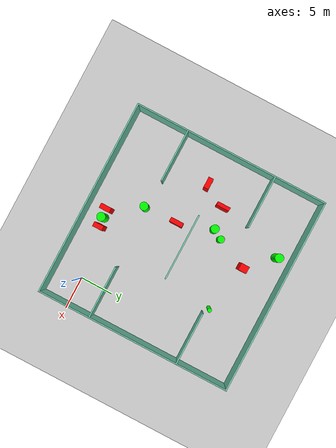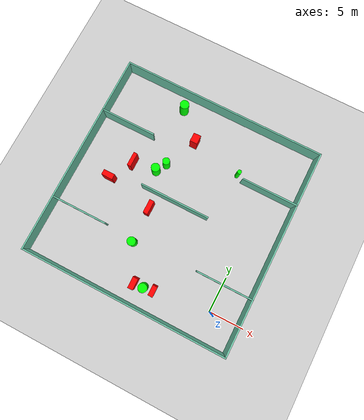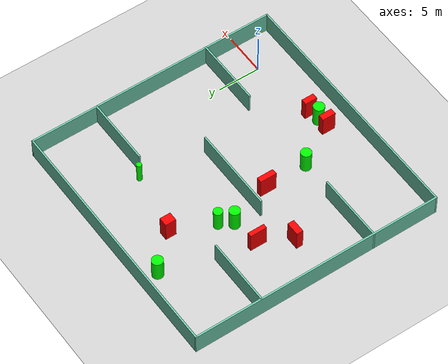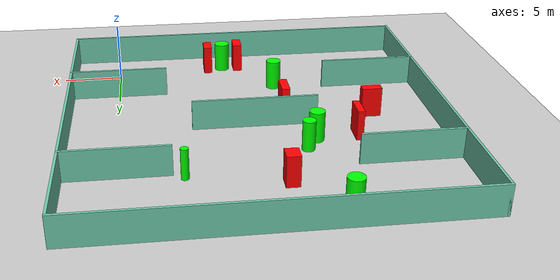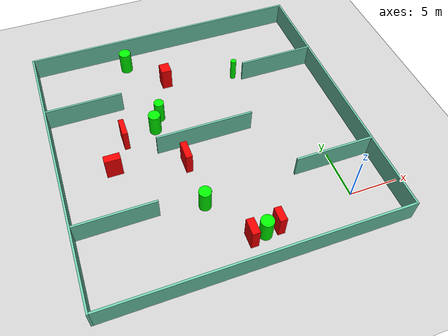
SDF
<sdf version="1.7">
 <world name="default">
  <light name="sun" type="directional">
   <pose>0 0 10 0 -0 0</pose>
   <diffuse>0.8 0.8 0.8 1</diffuse>
   <specular>0.2 0.2 0.2 1</specular>
   <attenuation>
    <range>1000</range>
    <constant>0.9</constant>
    <linear>0.01</linear>
    <quadratic>0.001</quadratic>
   </attenuation>
   <direction>-0.5 0.1 -0.9</direction>
   <spot><inner_angle>0</inner_angle><outer_angle>0</outer_angle><falloff>0</falloff></spot>
  </light>
  <model name="ground_plane">
   <static>1</static>
   <link name="link">
    <collision name="collision">
     <geometry><plane><normal>0 0 1</normal><size>100 100</size></plane></geometry>
     <surface>
      <contact><collide_bitmask>65535</collide_bitmask></contact>
      <friction><ode><mu>100</mu><mu2>50</mu2></ode></friction>
     </surface>
    </collision>
    <visual name="visual">
     <cast_shadows>0</cast_shadows>
     <geometry><plane><normal>0 0 1</normal><size>100 100</size></plane></geometry>
     <material>
      <script><uri>file://media/materials/scripts/gazebo.material</uri><name>Gazebo/Grey</name></script>
     </material>
    </visual>
   </link>
  </model>
  <gravity>0 0 -9.8</gravity>
  <magnetic_field>6e-06 2.3e-05 -4.2e-05</magnetic_field>
  <atmosphere type="adiabatic"/>
  <physics type="ode">
   <max_step_size>0.001</max_step_size>
   <real_time_factor>1</real_time_factor>
   <real_time_update_rate>1000</real_time_update_rate>
  </physics>
  <scene><ambient>0.4 0.4 0.4 1</ambient><background>0.7 0.7 0.7 1</background><shadows>1</shadows></scene>
  <spherical_coordinates>
   <surface_model>EARTH_WGS84</surface_model>
   <latitude_deg>0</latitude_deg>
   <longitude_deg>0</longitude_deg>
   <elevation>0</elevation>
   <heading_deg>0</heading_deg>
  </spherical_coordinates>
  <model name="my_base_walls">
   <link name="Wall_10">
    <collision name="Wall_10_Collision">
     <geometry><box><size>8.2 0.2 2.5</size></box></geometry>
     <pose>0 0 1.25 0 -0 0</pose>
    </collision>
    <visual name="Wall_10_Visual">
     <pose>0 0 1.25 0 -0 0</pose>
     <geometry><box><size>8.2 0.2 2.5</size></box></geometry>
     <material>
      <script><uri>file://media/materials/scripts/gazebo.material</uri><name>Gazebo/Grey</name></script>
      <ambient>0.435294 0.796078 0.67451 1</ambient>
     </material>
     <meta><layer>0</layer></meta>
    </visual>
    <pose>-11 -7 0 0 -0 0</pose>
   </link>
   <link name="Wall_12">
    <collision name="Wall_12_Collision">
     <geometry><box><size>8.2 0.2 2.5</size></box></geometry>
     <pose>0 0 1.25 0 -0 0</pose>
    </collision>
    <visual name="Wall_12_Visual">
     <pose>0 0 1.25 0 -0 0</pose>
     <geometry><box><size>8.2 0.2 2.5</size></box></geometry>
     <material>
      <script><uri>file://media/materials/scripts/gazebo.material</uri><name>Gazebo/Grey</name></script>
      <ambient>0.435294 0.796078 0.67451 1</ambient>
     </material>
     <meta><layer>0</layer></meta>
    </visual>
    <pose>-11 7 0 0 -0 0</pose>
   </link>
   <link name="Wall_14">
    <collision name="Wall_14_Collision">
     <geometry><box><size>8.2 0.2 2.5</size></box></geometry>
     <pose>0 0 1.25 0 -0 0</pose>
    </collision>
    <visual name="Wall_14_Visual">
     <pose>0 0 1.25 0 -0 0</pose>
     <geometry><box><size>8.2 0.2 2.5</size></box></geometry>
     <material>
      <script><uri>file://media/materials/scripts/gazebo.material</uri><name>Gazebo/Grey</name></script>
      <ambient>0.435294 0.796078 0.67451 1</ambient>
     </material>
     <meta><layer>0</layer></meta>
    </visual>
    <pose>11 7 0 0 -0 3.14159</pose>
   </link>
   <link name="Wall_16">
    <collision name="Wall_16_Collision">
     <geometry><box><size>10.2 0.2 2.5</size></box></geometry>
     <pose>0 0 1.25 0 -0 0</pose>
    </collision>
    <visual name="Wall_16_Visual">
     <pose>0 0 1.25 0 -0 0</pose>
     <geometry><box><size>10.2 0.2 2.5</size></box></geometry>
     <material>
      <script><uri>file://media/materials/scripts/gazebo.material</uri><name>Gazebo/Grey</name></script>
      <ambient>0.435294 0.796078 0.67451 1</ambient>
     </material>
     <meta><layer>0</layer></meta>
    </visual>
    <pose>0 0 0 0 -0 3.14159</pose>
   </link>
   <link name="Wall_2">
    <collision name="Wall_2_Collision">
     <geometry><box><size>30.2 0.2 2.5</size></box></geometry>
     <pose>0 0 1.25 0 -0 0</pose>
    </collision>
    <visual name="Wall_2_Visual">
     <pose>0 0 1.25 0 -0 0</pose>
     <geometry><box><size>30.2 0.2 2.5</size></box></geometry>
     <material>
      <script><uri>file://media/materials/scripts/gazebo.material</uri><name>Gazebo/Grey</name></script>
      <ambient>0.435294 0.796078 0.67451 1</ambient>
     </material>
     <meta><layer>0</layer></meta>
    </visual>
    <pose>0 -15 0 0 -0 3.14159</pose>
   </link>
   <link name="Wall_3">
    <collision name="Wall_3_Collision">
     <geometry><box><size>30.2 0.2 2.5</size></box></geometry>
     <pose>0 0 1.25 0 -0 0</pose>
    </collision>
    <visual name="Wall_3_Visual">
     <pose>0 0 1.25 0 -0 0</pose>
     <geometry><box><size>30.2 0.2 2.5</size></box></geometry>
     <material>
      <script><uri>file://media/materials/scripts/gazebo.material</uri><name>Gazebo/Grey</name></script>
      <ambient>0.435294 0.796078 0.67451 1</ambient>
     </material>
     <meta><layer>0</layer></meta>
    </visual>
    <pose>-15 0 0 0 -0 1.5708</pose>
   </link>
   <link name="Wall_4">
    <collision name="Wall_4_Collision">
     <geometry><box><size>30.2 0.2 2.5</size></box></geometry>
     <pose>0 0 1.25 0 -0 0</pose>
    </collision>
    <visual name="Wall_4_Visual">
     <pose>0 0 1.25 0 -0 0</pose>
     <geometry><box><size>30.2 0.2 2.5</size></box></geometry>
     <material>
      <script><uri>file://media/materials/scripts/gazebo.material</uri><name>Gazebo/Grey</name></script>
      <ambient>0.435294 0.796078 0.67451 1</ambient>
     </material>
     <meta><layer>0</layer></meta>
    </visual>
    <pose>0 15 0 0 -0 0</pose>
   </link>
   <link name="Wall_6">
    <collision name="Wall_6_Collision">
     <geometry><box><size>30.2 0.2 2.5</size></box></geometry>
     <pose>0 0 1.25 0 -0 0</pose>
    </collision>
    <visual name="Wall_6_Visual">
     <pose>0 0 1.25 0 -0 0</pose>
     <geometry><box><size>30.2 0.2 2.5</size></box></geometry>
     <material>
      <script><uri>file://media/materials/scripts/gazebo.material</uri><name>Gazebo/Grey</name></script>
      <ambient>0.435294 0.796078 0.67451 1</ambient>
     </material>
     <meta><layer>0</layer></meta>
    </visual>
    <pose>15 0 0 0 -0 1.5708</pose>
   </link>
   <link name="Wall_8">
    <collision name="Wall_8_Collision">
     <geometry><box><size>8.2 0.2 2.5</size></box></geometry>
     <pose>0 0 1.25 0 -0 0</pose>
    </collision>
    <visual name="Wall_8_Visual">
     <pose>0 0 1.25 0 -0 0</pose>
     <geometry><box><size>8.2 0.2 2.5</size></box></geometry>
     <material>
      <script><uri>file://media/materials/scripts/gazebo.material</uri><name>Gazebo/Grey</name></script>
      <ambient>0.435294 0.796078 0.67451 1</ambient>
     </material>
     <meta><layer>0</layer></meta>
    </visual>
    <pose>11 -7 0 0 -0 3.14159</pose>
   </link>
   <static>1</static>
   <pose>-11 11 0 0 -0 0</pose>
  </model>
  <model name="cylinder1">
   <static>1</static>
   <link name="link">
    <inertial>
     <mass>1</mass>
     <inertia><ixx>0.5</ixx><ixy>0</ixy><ixz>0</ixz><iyy>0.5</iyy><iyz>0</iyz><izz>1</izz></inertia>
    </inertial>
    <collision name="collision">
     <geometry><cylinder><radius>0.5224637569319247</radius><length>2.5</length></cylinder></geometry>
    </collision>
    <visual name="visual">
     <geometry><cylinder><radius>0.5224637569319247</radius><length>2.5</length></cylinder></geometry>
     <material>
      <ambient>0 1 0 1</ambient>
      <diffuse>0 1 0 1</diffuse>
      <specular>0.1 0.1 0.1 1</specular>
      <emissive>0 0 0 0</emissive>
     </material>
    </visual>
   </link>
   <pose>-14.563544270110821 15.372915886617761 1.25 0 0 0</pose>
  </model>
  <model name="cylinder2">
   <static>1</static>
   <link name="link">
    <inertial>
     <mass>1</mass>
     <inertia><ixx>0.5</ixx><ixy>0</ixy><ixz>0</ixz><iyy>0.5</iyy><iyz>0</iyz><izz>1</izz></inertia>
    </inertial>
    <collision name="collision">
     <geometry><cylinder><radius>0.3060974112820849</radius><length>2.5</length></cylinder></geometry>
    </collision>
    <visual name="visual">
     <geometry><cylinder><radius>0.3060974112820849</radius><length>2.5</length></cylinder></geometry>
     <material>
      <ambient>0 1 0 1</ambient>
      <diffuse>0 1 0 1</diffuse>
      <specular>0.1 0.1 0.1 1</specular>
      <emissive>0 0 0 0</emissive>
     </material>
    </visual>
   </link>
   <pose>-4.92396618960789 18.635563349338018 1.25 0 0 0</pose>
  </model>
  <model name="cylinder3">
   <static>1</static>
   <link name="link">
    <inertial>
     <mass>1</mass>
     <inertia><ixx>0.5</ixx><ixy>0</ixy><ixz>0</ixz><iyy>0.5</iyy><iyz>0</iyz><izz>1</izz></inertia>
    </inertial>
    <collision name="collision">
     <geometry><cylinder><radius>0.6519273607041383</radius><length>2.5</length></cylinder></geometry>
    </collision>
    <visual name="visual">
     <geometry><cylinder><radius>0.6519273607041383</radius><length>2.5</length></cylinder></geometry>
     <material>
      <ambient>0 1 0 1</ambient>
      <diffuse>0 1 0 1</diffuse>
      <specular>0.1 0.1 0.1 1</specular>
      <emissive>0 0 0 0</emissive>
     </material>
    </visual>
   </link>
   <pose>-16.07299457341236 23.89660836217226 1.25 0 0 0</pose>
  </model>
  <model name="cylinder4">
   <static>1</static>
   <link name="link">
    <inertial>
     <mass>1</mass>
     <inertia><ixx>0.5</ixx><ixy>0</ixy><ixz>0</ixz><iyy>0.5</iyy><iyz>0</iyz><izz>1</izz></inertia>
    </inertial>
    <collision name="collision">
     <geometry><cylinder><radius>0.6187796391697615</radius><length>2.5</length></cylinder></geometry>
    </collision>
    <visual name="visual">
     <geometry><cylinder><radius>0.6187796391697615</radius><length>2.5</length></cylinder></geometry>
     <material>
      <ambient>0 1 0 1</ambient>
      <diffuse>0 1 0 1</diffuse>
      <specular>0.1 0.1 0.1 1</specular>
      <emissive>0 0 0 0</emissive>
     </material>
    </visual>
   </link>
   <pose>-13.600196479113144 3.5090556812986975 1.25 0 0 0</pose>
  </model>
  <model name="cylinder5">
   <static>1</static>
   <link name="link">
    <inertial>
     <mass>1</mass>
     <inertia><ixx>0.5</ixx><ixy>0</ixy><ixz>0</ixz><iyy>0.5</iyy><iyz>0</iyz><izz>1</izz></inertia>
    </inertial>
    <collision name="collision">
     <geometry><cylinder><radius>0.6460704625362256</radius><length>2.5</length></cylinder></geometry>
    </collision>
    <visual name="visual">
     <geometry><cylinder><radius>0.6460704625362256</radius><length>2.5</length></cylinder></geometry>
     <material>
      <ambient>0 1 0 1</ambient>
      <diffuse>0 1 0 1</diffuse>
      <specular>0.1 0.1 0.1 1</specular>
      <emissive>0 0 0 0</emissive>
     </material>
    </visual>
   </link>
   <pose>-9.428309361597488 -1.1699140532866052 1.25 0 0 0</pose>
  </model>
  <model name="cylinder6">
   <static>1</static>
   <link name="link">
    <inertial>
     <mass>1</mass>
     <inertia><ixx>0.5</ixx><ixy>0</ixy><ixz>0</ixz><iyy>0.5</iyy><iyz>0</iyz><izz>1</izz></inertia>
    </inertial>
    <collision name="collision">
     <geometry><cylinder><radius>0.6268014678936777</radius><length>2.5</length></cylinder></geometry>
    </collision>
    <visual name="visual">
     <geometry><cylinder><radius>0.6268014678936777</radius><length>2.5</length></cylinder></geometry>
     <material>
      <ambient>0 1 0 1</ambient>
      <diffuse>0 1 0 1</diffuse>
      <specular>0.1 0.1 0.1 1</specular>
      <emissive>0 0 0 0</emissive>
     </material>
    </visual>
   </link>
   <pose>-15.469284218138634 13.91398907281458 1.25 0 0 0</pose>
  </model>
  <model name="box1">
   <static>1</static>
   <link name="link">
    <inertial>
     <mass>1</mass>
     <inertia><ixx>0.083</ixx><ixy>0</ixy><ixz>0</ixz><iyy>0.083</iyy><iyz>0</iyz><izz>0.083</izz></inertia>
    </inertial>
    <collision name="collision">
     <geometry><box><size>1.6374578814843255 0.787125980627434 2.5</size></box></geometry>
    </collision>
    <visual name="visual">
     <geometry><box><size>1.6374578814843255 0.787125980627434 2.5</size></box></geometry>
     <material>
      <ambient>1 0 0 1</ambient>
      <diffuse>1 0 0 1</diffuse>
      <specular>0.1 0.1 0.1 1</specular>
      <emissive>0 0 0 0</emissive>
     </material>
    </visual>
    <sensor name="my_contact" type="contact">
     <contact><collision>box_collision</collision><topic>__default_topic__</topic></contact>
    </sensor>
   </link>
   <pose>-20.773866459417448 10.070601659186876 1.25 0 0 0</pose>
  </model>
  <model name="box2">
   <static>1</static>
   <link name="link">
    <inertial>
     <mass>1</mass>
     <inertia><ixx>0.083</ixx><ixy>0</ixy><ixz>0</ixz><iyy>0.083</iyy><iyz>0</iyz><izz>0.083</izz></inertia>
    </inertial>
    <collision name="collision">
     <geometry><box><size>0.5458720531667446 1.9842963669095453 2.5</size></box></geometry>
    </collision>
    <visual name="visual">
     <geometry><box><size>0.5458720531667446 1.9842963669095453 2.5</size></box></geometry>
     <material>
      <ambient>1 0 0 1</ambient>
      <diffuse>1 0 0 1</diffuse>
      <specular>0.1 0.1 0.1 1</specular>
      <emissive>0 0 0 0</emissive>
     </material>
    </visual>
    <sensor name="my_contact" type="contact">
     <contact><collision>box_collision</collision><topic>__default_topic__</topic></contact>
    </sensor>
   </link>
   <pose>-18.849407544381755 13.47157178590128 1.25 0 0 0</pose>
  </model>
  <model name="box3">
   <static>1</static>
   <link name="link">
    <inertial>
     <mass>1</mass>
     <inertia><ixx>0.083</ixx><ixy>0</ixy><ixz>0</ixz><iyy>0.083</iyy><iyz>0</iyz><izz>0.083</izz></inertia>
    </inertial>
    <collision name="collision">
     <geometry><box><size>1.079947201798507 1.287742999721986 2.5</size></box></geometry>
    </collision>
    <visual name="visual">
     <geometry><box><size>1.079947201798507 1.287742999721986 2.5</size></box></geometry>
     <material>
      <ambient>1 0 0 1</ambient>
      <diffuse>1 0 0 1</diffuse>
      <specular>0.1 0.1 0.1 1</specular>
      <emissive>0 0 0 0</emissive>
     </material>
    </visual>
    <sensor name="my_contact" type="contact">
     <contact><collision>box_collision</collision><topic>__default_topic__</topic></contact>
    </sensor>
   </link>
   <pose>-12.44547114880502 20.140262779082143 1.25 0 0 0</pose>
  </model>
  <model name="box4">
   <static>1</static>
   <link name="link">
    <inertial>
     <mass>1</mass>
     <inertia><ixx>0.083</ixx><ixy>0</ixy><ixz>0</ixz><iyy>0.083</iyy><iyz>0</iyz><izz>0.083</izz></inertia>
    </inertial>
    <collision name="collision">
     <geometry><box><size>0.7630090766271262 1.6050605436932321 2.5</size></box></geometry>
    </collision>
    <visual name="visual">
     <geometry><box><size>0.7630090766271262 1.6050605436932321 2.5</size></box></geometry>
     <material>
      <ambient>1 0 0 1</ambient>
      <diffuse>1 0 0 1</diffuse>
      <specular>0.1 0.1 0.1 1</specular>
      <emissive>0 0 0 0</emissive>
     </material>
    </visual>
    <sensor name="my_contact" type="contact">
     <contact><collision>box_collision</collision><topic>__default_topic__</topic></contact>
    </sensor>
   </link>
   <pose>-10.819998902271221 -1.2258917324315557 1.25 0 0 0</pose>
  </model>
  <model name="box5">
   <static>1</static>
   <link name="link">
    <inertial>
     <mass>1</mass>
     <inertia><ixx>0.083</ixx><ixy>0</ixy><ixz>0</ixz><iyy>0.083</iyy><iyz>0</iyz><izz>0.083</izz></inertia>
    </inertial>
    <collision name="collision">
     <geometry><box><size>0.673748575094187 1.984273330635208 2.5</size></box></geometry>
    </collision>
    <visual name="visual">
     <geometry><box><size>0.673748575094187 1.984273330635208 2.5</size></box></geometry>
     <material>
      <ambient>1 0 0 1</ambient>
      <diffuse>1 0 0 1</diffuse>
      <specular>0.1 0.1 0.1 1</specular>
      <emissive>0 0 0 0</emissive>
     </material>
    </visual>
    <sensor name="my_contact" type="contact">
     <contact><collision>box_collision</collision><topic>__default_topic__</topic></contact>
    </sensor>
   </link>
   <pose>-13.737882259784001 8.642664361934672 1.25 0 0 0</pose>
  </model>
  <model name="box6">
   <static>1</static>
   <link name="link">
    <inertial>
     <mass>1</mass>
     <inertia><ixx>0.083</ixx><ixy>0</ixy><ixz>0</ixz><iyy>0.083</iyy><iyz>0</iyz><izz>0.083</izz></inertia>
    </inertial>
    <collision name="collision">
     <geometry><box><size>0.7105038071317908 1.472126034304634 2.5</size></box></geometry>
    </collision>
    <visual name="visual">
     <geometry><box><size>0.7105038071317908 1.472126034304634 2.5</size></box></geometry>
     <material>
      <ambient>1 0 0 1</ambient>
      <diffuse>1 0 0 1</diffuse>
      <specular>0.1 0.1 0.1 1</specular>
      <emissive>0 0 0 0</emissive>
     </material>
    </visual>
    <sensor name="my_contact" type="contact">
     <contact><collision>box_collision</collision><topic>__default_topic__</topic></contact>
    </sensor>
   </link>
   <pose>-8.059521343816312 -0.9161606736046846 1.25 0 0 0</pose>
  </model>
 </world>
</sdf>
